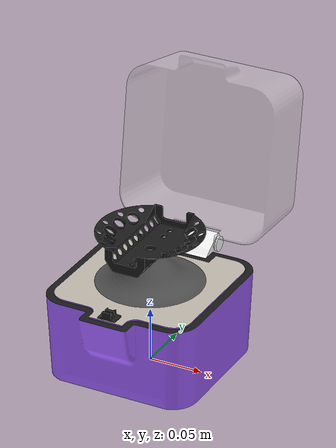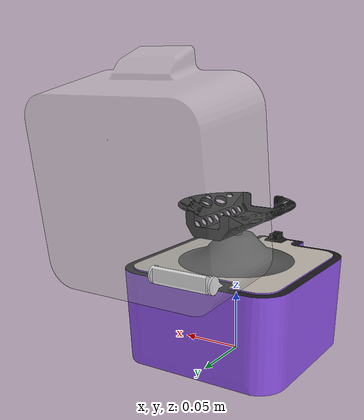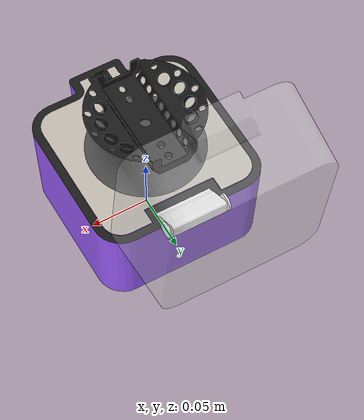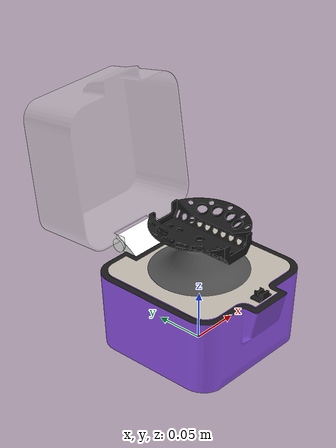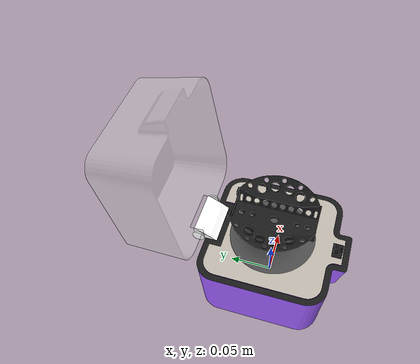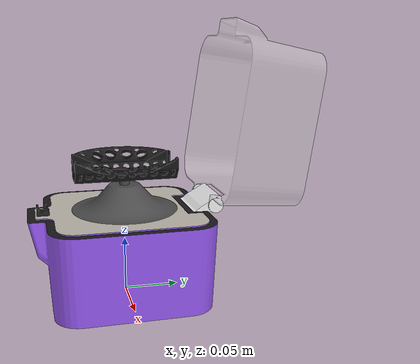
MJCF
<?xml version='1.0' encoding='utf-8'?>
<mujoco model="centrifuge_tiangen_tgear_mini">
  <compiler angle="radian" autolimits="true" assetdir="../../assets" />
  <default>
    <default class="visual">
      <geom type="mesh" contype="0" conaffinity="0" density="0" group="2" />
      <mesh inertia="shell" />
    </default>
    <default class="inertia">
      <geom type="mesh" contype="0" conaffinity="0" group="5" />
      <mesh inertia="exact" />
    </default>
    <default class="collision">
      <geom type="mesh" contype="0" conaffinity="1" density="0" group="3" />
    </default>
  </default>
  <option gravity="0 0 0" />
  <asset>
    <mesh class="visual" name="body-visual-0" file="instrument/centrifuge_tiangen_tgear_mini/body-visual-0.obj" />
    <material name="body-0" rgba="0.623529 0.368627 1 1" metallic="0.0" roughness="1.0" />
    <mesh class="visual" name="body-visual-1" file="instrument/centrifuge_tiangen_tgear_mini/body-visual-1.obj" />
    <material name="body-1" rgba="1 1 1 1" metallic="0.0" roughness="1.0" />
    <mesh class="visual" name="body-visual-2" file="instrument/centrifuge_tiangen_tgear_mini/body-visual-2.obj" />
    <material name="body-2" rgba="0.298039 0.298039 0.298039 1" metallic="0.0" roughness="1.0" />
    <mesh class="visual" name="body-visual-3" file="instrument/centrifuge_tiangen_tgear_mini/body-visual-3.obj" />
    <texture name="body-0" type="2d" file="instrument/centrifuge_tiangen_tgear_mini/body-0.png" />
    <material name="body-3" rgba="1 1 1 1" metallic="0.0" roughness="1.0" texture="body-0" />
    <mesh class="visual" name="body-visual-4" file="instrument/centrifuge_tiangen_tgear_mini/body-visual-4.obj" />
    <material name="body-4" rgba="0.101961 0.101961 0.101961 1" metallic="0.0" roughness="1.0" />
    <mesh class="inertia" name="body-inertia" file="instrument/centrifuge_tiangen_tgear_mini/body-inertia.obj" />
    <mesh class="collision" name="body-collision-0" file="instrument/centrifuge_tiangen_tgear_mini/body-collision-0.obj" />
    <mesh class="collision" name="body-collision-1" file="instrument/centrifuge_tiangen_tgear_mini/body-collision-1.obj" />
    <mesh class="collision" name="body-collision-2" file="instrument/centrifuge_tiangen_tgear_mini/body-collision-2.obj" />
    <mesh class="collision" name="body-collision-3" file="instrument/centrifuge_tiangen_tgear_mini/body-collision-3.obj" />
    <mesh class="visual" name="lid-visual-0" file="instrument/centrifuge_tiangen_tgear_mini/lid-visual-0.obj" />
    <material name="lid-0" rgba="0.858824 0.858824 0.858824 0.312941" metallic="0.0" roughness="1.0" />
    <mesh class="inertia" name="lid-inertia" file="instrument/centrifuge_tiangen_tgear_mini/lid-inertia.obj" />
    <mesh class="collision" name="lid-collision-0" file="instrument/centrifuge_tiangen_tgear_mini/lid-collision-0.obj" />
    <mesh class="collision" name="lid-collision-1" file="instrument/centrifuge_tiangen_tgear_mini/lid-collision-1.obj" />
    <mesh class="visual" name="rotor-visual-0" file="instrument/centrifuge_tiangen_tgear_mini/rotor-visual-0.obj" />
    <material name="rotor-0" rgba="0.101961 0.101961 0.101961 1" metallic="0.0" roughness="1.0" />
    <mesh class="inertia" name="rotor-inertia" file="instrument/centrifuge_tiangen_tgear_mini/rotor-inertia.obj" />
  </asset>
  <extension />
  <worldbody>
    <body name="body" pos="0 0 0.02340602" quat="1 0 0 0">
      <geom class="visual" mesh="body-visual-0" material="body-0" />
      <geom class="visual" mesh="body-visual-1" material="body-1" />
      <geom class="visual" mesh="body-visual-2" material="body-2" />
      <geom class="visual" mesh="body-visual-3" material="body-3" />
      <geom class="visual" mesh="body-visual-4" material="body-4" />
      <geom class="inertia" mesh="body-inertia" density="1000" />
      <geom class="collision" mesh="body-collision-0" />
      <geom class="collision" mesh="body-collision-1" />
      <geom class="collision" mesh="body-collision-2" />
      <geom class="collision" mesh="body-collision-3" />
      <body name="lid" pos="0.00019315 0.10508702 0.13833942" quat="0 0 0.75623972 0.65429465">
        <site name="lid" pos="0.0 0.04033 0.048" quat="1 0 0 0" size="0.0001" rgba="1 0 0 1"/>
        <joint name="lid" type="hinge" pos="0.02748361 -0.08065858 -0.0138236" axis="-1 0 0" range="0 1.712" />
        <geom class="visual" mesh="lid-visual-0" material="lid-0" />
        <geom class="inertia" mesh="lid-inertia" density="1000" />
        <geom class="collision" mesh="lid-collision-0" pos="0 -0.0024576 0" />
        <geom class="collision" mesh="lid-collision-1" />
      </body>
      <body name="rotor" pos="0.00000054 0.00025897 0.08725972" quat="1 0 0 0">
        <joint name="rotor" type="hinge" pos="-0.00000055 0.00000082 -0.0030014" axis="0 0 1" range="-180 180"/>
        <geom class="visual" mesh="rotor-visual-0" material="rotor-0" />
        <geom class="inertia" mesh="rotor-inertia" density="1000" />
      </body>
    </body>
  </worldbody>
  <equality>
    <joint name="lid-lock" joint1="lid" polycoef="1.712" active="false" />
  </equality>
  <actuator />
</mujoco>
